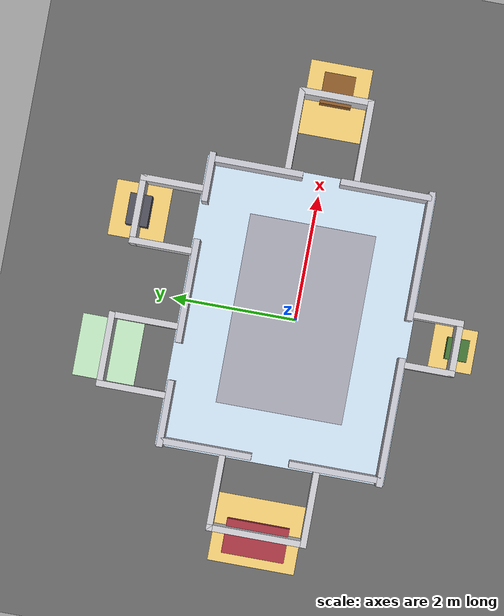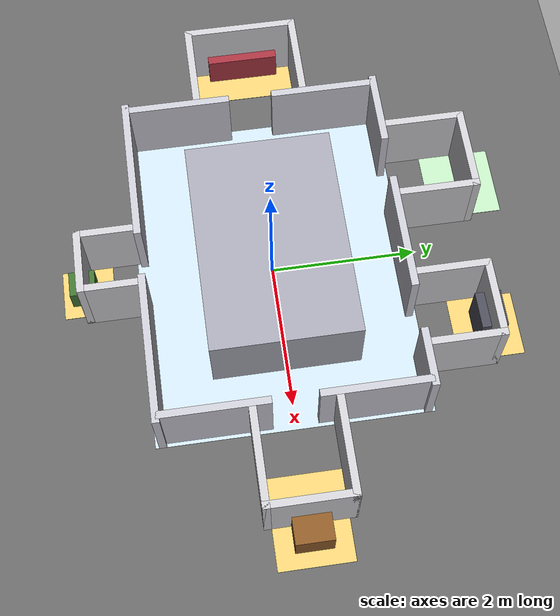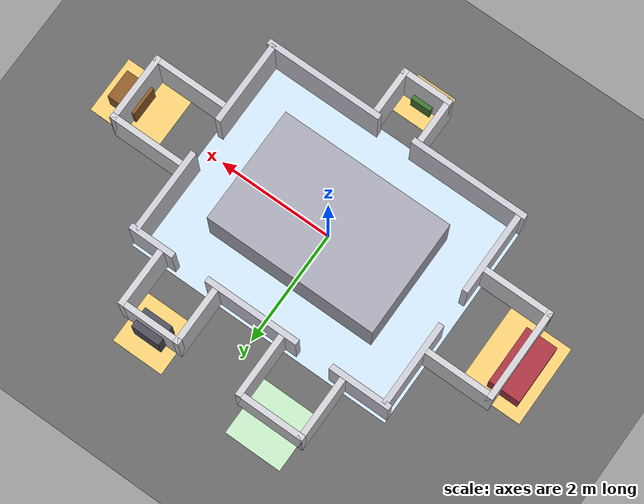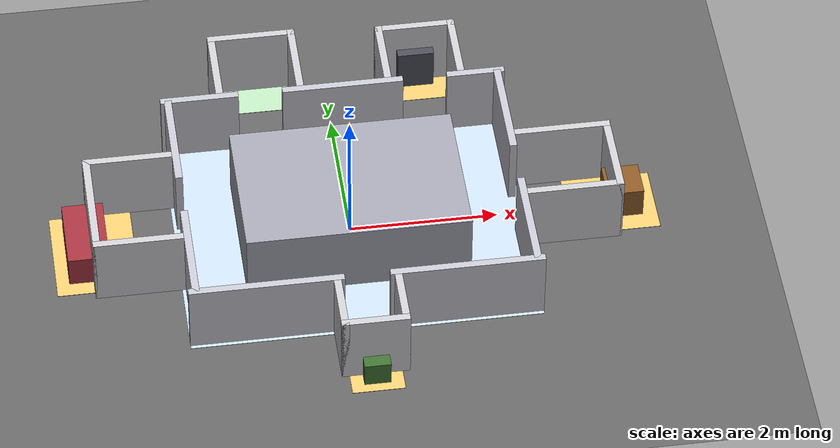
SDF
<?xml version="1.0" ?>
<sdf version="1.6">
  <world name="urbanlens_loop">
    <scene><ambient>0.55 0.55 0.55 1</ambient><background>0.75 0.82 0.9 1</background><shadows>true</shadows></scene>
    <light name="sun" type="directional">
      <cast_shadows>true</cast_shadows><pose>0 0 10 0 0 0</pose>
      <diffuse>0.85 0.85 0.85 1</diffuse><specular>0.2 0.2 0.2 1</specular>
      <attenuation><range>1000</range><constant>0.9</constant><linear>0.01</linear><quadratic>0.001</quadratic></attenuation>
      <direction>-0.4 0.2 -0.9</direction>
    </light>
    <model name="ground_plane">
      <static>true</static>
      <link name="link">
        <collision name="collision"><geometry><plane><normal>0 0 1</normal><size>60 60</size></plane></geometry>
          <surface><friction><ode><mu>100</mu><mu2>50</mu2></ode></friction></surface></collision>
        <visual name="visual"><cast_shadows>false</cast_shadows>
          <geometry><plane><normal>0 0 1</normal><size>60 60</size></plane></geometry>
          <material><ambient>0.4 0.4 0.4 1</ambient><diffuse>0.4 0.4 0.4 1</diffuse></material></visual>
      </link>
    </model>

    <model name="wall_top_0">
      <static>true</static>
      <pose>-1.8200 1.7500 0.5000 0 0 0.000000</pose>
      <link name="link">
      <collision name="collision"><geometry><box><size>1.0600000000000003 0.1 1.0</size></box></geometry></collision>
        <visual name="visual">
          <geometry><box><size>1.0600000000000003 0.1 1.0</size></box></geometry>
          <material><ambient>0.78 0.78 0.82 1</ambient><diffuse>0.78 0.78 0.82 1</diffuse></material>
        </visual>
      </link>
    </model>
    <model name="wall_top_1">
      <static>true</static>
      <pose>0.1350 1.7500 0.5000 0 0 0.000000</pose>
      <link name="link">
      <collision name="collision"><geometry><box><size>1.65 0.1 1.0</size></box></geometry></collision>
        <visual name="visual">
          <geometry><box><size>1.65 0.1 1.0</size></box></geometry>
          <material><ambient>0.78 0.78 0.82 1</ambient><diffuse>0.78 0.78 0.82 1</diffuse></material>
        </visual>
      </link>
    </model>
    <model name="wall_top_2">
      <static>true</static>
      <pose>1.9550 1.7500 0.5000 0 0 0.000000</pose>
      <link name="link">
      <collision name="collision"><geometry><box><size>0.7899999999999998 0.1 1.0</size></box></geometry></collision>
        <visual name="visual">
          <geometry><box><size>0.7899999999999998 0.1 1.0</size></box></geometry>
          <material><ambient>0.78 0.78 0.82 1</ambient><diffuse>0.78 0.78 0.82 1</diffuse></material>
        </visual>
      </link>
    </model>
    <model name="wall_bottom_0">
      <static>true</static>
      <pose>-1.3250 -1.7500 0.5000 0 0 0.000000</pose>
      <link name="link">
      <collision name="collision"><geometry><box><size>2.0500000000000003 0.1 1.0</size></box></geometry></collision>
        <visual name="visual">
          <geometry><box><size>2.0500000000000003 0.1 1.0</size></box></geometry>
          <material><ambient>0.78 0.78 0.82 1</ambient><diffuse>0.78 0.78 0.82 1</diffuse></material>
        </visual>
      </link>
    </model>
    <model name="wall_bottom_1">
      <static>true</static>
      <pose>1.3250 -1.7500 0.5000 0 0 0.000000</pose>
      <link name="link">
      <collision name="collision"><geometry><box><size>2.0500000000000003 0.1 1.0</size></box></geometry></collision>
        <visual name="visual">
          <geometry><box><size>2.0500000000000003 0.1 1.0</size></box></geometry>
          <material><ambient>0.78 0.78 0.82 1</ambient><diffuse>0.78 0.78 0.82 1</diffuse></material>
        </visual>
      </link>
    </model>
    <model name="wall_left_0">
      <static>true</static>
      <pose>-2.2500 -1.0250 0.5000 0 0 0.000000</pose>
      <link name="link">
      <collision name="collision"><geometry><box><size>0.1 1.45 1.0</size></box></geometry></collision>
        <visual name="visual">
          <geometry><box><size>0.1 1.45 1.0</size></box></geometry>
          <material><ambient>0.78 0.78 0.82 1</ambient><diffuse>0.78 0.78 0.82 1</diffuse></material>
        </visual>
      </link>
    </model>
    <model name="wall_left_1">
      <static>true</static>
      <pose>-2.2500 1.0250 0.5000 0 0 0.000000</pose>
      <link name="link">
      <collision name="collision"><geometry><box><size>0.1 1.45 1.0</size></box></geometry></collision>
        <visual name="visual">
          <geometry><box><size>0.1 1.45 1.0</size></box></geometry>
          <material><ambient>0.78 0.78 0.82 1</ambient><diffuse>0.78 0.78 0.82 1</diffuse></material>
        </visual>
      </link>
    </model>
    <model name="wall_right_0">
      <static>true</static>
      <pose>2.2500 -1.0250 0.5000 0 0 0.000000</pose>
      <link name="link">
      <collision name="collision"><geometry><box><size>0.1 1.45 1.0</size></box></geometry></collision>
        <visual name="visual">
          <geometry><box><size>0.1 1.45 1.0</size></box></geometry>
          <material><ambient>0.78 0.78 0.82 1</ambient><diffuse>0.78 0.78 0.82 1</diffuse></material>
        </visual>
      </link>
    </model>
    <model name="wall_right_1">
      <static>true</static>
      <pose>2.2500 1.0250 0.5000 0 0 0.000000</pose>
      <link name="link">
      <collision name="collision"><geometry><box><size>0.1 1.45 1.0</size></box></geometry></collision>
        <visual name="visual">
          <geometry><box><size>0.1 1.45 1.0</size></box></geometry>
          <material><ambient>0.78 0.78 0.82 1</ambient><diffuse>0.78 0.78 0.82 1</diffuse></material>
        </visual>
      </link>
    </model>
    <model name="island">
      <static>true</static>
      <pose>0.0000 0.0000 0.5000 0 0 0.000000</pose>
      <link name="link">
      <collision name="collision"><geometry><box><size>3.0 2.0 1.0</size></box></geometry></collision>
        <visual name="visual">
          <geometry><box><size>3.0 2.0 1.0</size></box></geometry>
          <material><ambient>0.65 0.65 0.7 1</ambient><diffuse>0.65 0.65 0.7 1</diffuse></material>
        </visual>
      </link>
    </model>
    <model name="lane_floor">
      <static>true</static>
      <pose>0.0000 0.0000 0.0010 0 0 0.000000</pose>
      <link name="link">
        <visual name="visual">
          <geometry><box><size>4.7 3.7 0.002</size></box></geometry>
          <material><ambient>0.8 0.88 0.95 1</ambient><diffuse>0.8 0.88 0.95 1</diffuse></material>
        </visual>
      </link>
    </model>
    <model name="S1_back">
      <static>true</static>
      <pose>-0.9900 2.8500 0.5000 0 0 0.000000</pose>
      <link name="link">
      <collision name="collision"><geometry><box><size>1.2 0.1 1.0</size></box></geometry></collision>
        <visual name="visual">
          <geometry><box><size>1.2 0.1 1.0</size></box></geometry>
          <material><ambient>0.8 0.8 0.82 1</ambient><diffuse>0.8 0.8 0.82 1</diffuse></material>
        </visual>
      </link>
    </model>
    <model name="S1_side-1">
      <static>true</static>
      <pose>-1.5400 2.3500 0.5000 0 0 0.000000</pose>
      <link name="link">
      <collision name="collision"><geometry><box><size>0.1 1.1 1.0</size></box></geometry></collision>
        <visual name="visual">
          <geometry><box><size>0.1 1.1 1.0</size></box></geometry>
          <material><ambient>0.8 0.8 0.82 1</ambient><diffuse>0.8 0.8 0.82 1</diffuse></material>
        </visual>
      </link>
    </model>
    <model name="S1_side1">
      <static>true</static>
      <pose>-0.4400 2.3500 0.5000 0 0 0.000000</pose>
      <link name="link">
      <collision name="collision"><geometry><box><size>0.1 1.1 1.0</size></box></geometry></collision>
        <visual name="visual">
          <geometry><box><size>0.1 1.1 1.0</size></box></geometry>
          <material><ambient>0.8 0.8 0.82 1</ambient><diffuse>0.8 0.8 0.82 1</diffuse></material>
        </visual>
      </link>
    </model>
    <model name="S1_floor">
      <static>true</static>
      <pose>-0.9900 2.8500 0.0020 0 0 0.000000</pose>
      <link name="link">
        <visual name="visual">
          <geometry><box><size>1.0 1.0 0.004</size></box></geometry>
          <material><ambient>0.75 0.9 0.75 1</ambient><diffuse>0.75 0.9 0.75 1</diffuse></material>
        </visual>
      </link>
    </model>
    <model name="S2_back">
      <static>true</static>
      <pose>3.5500 0.0000 0.5000 0 0 -1.570796</pose>
      <link name="link">
      <collision name="collision"><geometry><box><size>1.2 0.1 1.0</size></box></geometry></collision>
        <visual name="visual">
          <geometry><box><size>1.2 0.1 1.0</size></box></geometry>
          <material><ambient>0.8 0.8 0.82 1</ambient><diffuse>0.8 0.8 0.82 1</diffuse></material>
        </visual>
      </link>
    </model>
    <model name="S2_side-1">
      <static>true</static>
      <pose>2.9500 0.5500 0.5000 0 0 -1.570796</pose>
      <link name="link">
      <collision name="collision"><geometry><box><size>0.1 1.3 1.0</size></box></geometry></collision>
        <visual name="visual">
          <geometry><box><size>0.1 1.3 1.0</size></box></geometry>
          <material><ambient>0.8 0.8 0.82 1</ambient><diffuse>0.8 0.8 0.82 1</diffuse></material>
        </visual>
      </link>
    </model>
    <model name="S2_side1">
      <static>true</static>
      <pose>2.9500 -0.5500 0.5000 0 0 -1.570796</pose>
      <link name="link">
      <collision name="collision"><geometry><box><size>0.1 1.3 1.0</size></box></geometry></collision>
        <visual name="visual">
          <geometry><box><size>0.1 1.3 1.0</size></box></geometry>
          <material><ambient>0.8 0.8 0.82 1</ambient><diffuse>0.8 0.8 0.82 1</diffuse></material>
        </visual>
      </link>
    </model>
    <model name="S2_floor">
      <static>true</static>
      <pose>3.5500 0.0000 0.0020 0 0 -1.570796</pose>
      <link name="link">
        <visual name="visual">
          <geometry><box><size>1.0 1.2 0.004</size></box></geometry>
          <material><ambient>0.95 0.8 0.45 1</ambient><diffuse>0.95 0.8 0.45 1</diffuse></material>
        </visual>
      </link>
    </model>
    <model name="S2_object_table_chair">
      <static>true</static>
      <pose>3.7000 0.0000 0.2250 0 0 -1.570796</pose>
      <link name="link">
      <collision name="collision"><geometry><box><size>0.5 0.5 0.45</size></box></geometry></collision>
        <visual name="visual">
          <geometry><box><size>0.5 0.5 0.45</size></box></geometry>
          <material><ambient>0.55 0.35 0.15 1</ambient><diffuse>0.55 0.35 0.15 1</diffuse></material>
        </visual>
      </link>
    </model>
    <model name="S3_back">
      <static>true</static>
      <pose>0.0000 -2.5500 0.5000 0 0 -3.141593</pose>
      <link name="link">
      <collision name="collision"><geometry><box><size>0.8999999999999999 0.1 1.0</size></box></geometry></collision>
        <visual name="visual">
          <geometry><box><size>0.8999999999999999 0.1 1.0</size></box></geometry>
          <material><ambient>0.8 0.8 0.82 1</ambient><diffuse>0.8 0.8 0.82 1</diffuse></material>
        </visual>
      </link>
    </model>
    <model name="S3_side-1">
      <static>true</static>
      <pose>0.4000 -2.2000 0.5000 0 0 -3.141593</pose>
      <link name="link">
      <collision name="collision"><geometry><box><size>0.1 0.7999999999999999 1.0</size></box></geometry></collision>
        <visual name="visual">
          <geometry><box><size>0.1 0.7999999999999999 1.0</size></box></geometry>
          <material><ambient>0.8 0.8 0.82 1</ambient><diffuse>0.8 0.8 0.82 1</diffuse></material>
        </visual>
      </link>
    </model>
    <model name="S3_side1">
      <static>true</static>
      <pose>-0.4000 -2.2000 0.5000 0 0 -3.141593</pose>
      <link name="link">
      <collision name="collision"><geometry><box><size>0.1 0.7999999999999999 1.0</size></box></geometry></collision>
        <visual name="visual">
          <geometry><box><size>0.1 0.7999999999999999 1.0</size></box></geometry>
          <material><ambient>0.8 0.8 0.82 1</ambient><diffuse>0.8 0.8 0.82 1</diffuse></material>
        </visual>
      </link>
    </model>
    <model name="S3_floor">
      <static>true</static>
      <pose>0.0000 -2.5500 0.0020 0 0 -3.141593</pose>
      <link name="link">
        <visual name="visual">
          <geometry><box><size>0.7 0.7 0.004</size></box></geometry>
          <material><ambient>0.95 0.8 0.45 1</ambient><diffuse>0.95 0.8 0.45 1</diffuse></material>
        </visual>
      </link>
    </model>
    <model name="S3_object_trash_bag">
      <static>true</static>
      <pose>0.0000 -2.6000 0.1750 0 0 -3.141593</pose>
      <link name="link">
      <collision name="collision"><geometry><box><size>0.35 0.35 0.35</size></box></geometry></collision>
        <visual name="visual">
          <geometry><box><size>0.35 0.35 0.35</size></box></geometry>
          <material><ambient>0.25 0.45 0.2 1</ambient><diffuse>0.25 0.45 0.2 1</diffuse></material>
        </visual>
      </link>
    </model>
    <model name="S4_back">
      <static>true</static>
      <pose>-3.4500 0.0000 0.5000 0 0 1.570796</pose>
      <link name="link">
      <collision name="collision"><geometry><box><size>1.5999999999999999 0.1 1.0</size></box></geometry></collision>
        <visual name="visual">
          <geometry><box><size>1.5999999999999999 0.1 1.0</size></box></geometry>
          <material><ambient>0.8 0.8 0.82 1</ambient><diffuse>0.8 0.8 0.82 1</diffuse></material>
        </visual>
      </link>
    </model>
    <model name="S4_side-1">
      <static>true</static>
      <pose>-2.9000 -0.7500 0.5000 0 0 1.570796</pose>
      <link name="link">
      <collision name="collision"><geometry><box><size>0.1 1.2000000000000002 1.0</size></box></geometry></collision>
        <visual name="visual">
          <geometry><box><size>0.1 1.2000000000000002 1.0</size></box></geometry>
          <material><ambient>0.8 0.8 0.82 1</ambient><diffuse>0.8 0.8 0.82 1</diffuse></material>
        </visual>
      </link>
    </model>
    <model name="S4_side1">
      <static>true</static>
      <pose>-2.9000 0.7500 0.5000 0 0 1.570796</pose>
      <link name="link">
      <collision name="collision"><geometry><box><size>0.1 1.2000000000000002 1.0</size></box></geometry></collision>
        <visual name="visual">
          <geometry><box><size>0.1 1.2000000000000002 1.0</size></box></geometry>
          <material><ambient>0.8 0.8 0.82 1</ambient><diffuse>0.8 0.8 0.82 1</diffuse></material>
        </visual>
      </link>
    </model>
    <model name="S4_floor">
      <static>true</static>
      <pose>-3.4500 0.0000 0.0020 0 0 1.570796</pose>
      <link name="link">
        <visual name="visual">
          <geometry><box><size>1.4 1.1 0.004</size></box></geometry>
          <material><ambient>0.95 0.8 0.45 1</ambient><diffuse>0.95 0.8 0.45 1</diffuse></material>
        </visual>
      </link>
    </model>
    <model name="S4_object_bed">
      <static>true</static>
      <pose>-3.5500 0.0000 0.2250 0 0 1.570796</pose>
      <link name="link">
      <collision name="collision"><geometry><box><size>1.0 0.55 0.45</size></box></geometry></collision>
        <visual name="visual">
          <geometry><box><size>1.0 0.55 0.45</size></box></geometry>
          <material><ambient>0.65 0.2 0.25 1</ambient><diffuse>0.65 0.2 0.25 1</diffuse></material>
        </visual>
      </link>
    </model>
    <model name="S5_back">
      <static>true</static>
      <pose>1.2600 2.7500 0.5000 0 0 0.000000</pose>
      <link name="link">
      <collision name="collision"><geometry><box><size>1.1 0.1 1.0</size></box></geometry></collision>
        <visual name="visual">
          <geometry><box><size>1.1 0.1 1.0</size></box></geometry>
          <material><ambient>0.8 0.8 0.82 1</ambient><diffuse>0.8 0.8 0.82 1</diffuse></material>
        </visual>
      </link>
    </model>
    <model name="S5_side-1">
      <static>true</static>
      <pose>0.7600 2.3000 0.5000 0 0 0.000000</pose>
      <link name="link">
      <collision name="collision"><geometry><box><size>0.1 1.0 1.0</size></box></geometry></collision>
        <visual name="visual">
          <geometry><box><size>0.1 1.0 1.0</size></box></geometry>
          <material><ambient>0.8 0.8 0.82 1</ambient><diffuse>0.8 0.8 0.82 1</diffuse></material>
        </visual>
      </link>
    </model>
    <model name="S5_side1">
      <static>true</static>
      <pose>1.7600 2.3000 0.5000 0 0 0.000000</pose>
      <link name="link">
      <collision name="collision"><geometry><box><size>0.1 1.0 1.0</size></box></geometry></collision>
        <visual name="visual">
          <geometry><box><size>0.1 1.0 1.0</size></box></geometry>
          <material><ambient>0.8 0.8 0.82 1</ambient><diffuse>0.8 0.8 0.82 1</diffuse></material>
        </visual>
      </link>
    </model>
    <model name="S5_floor">
      <static>true</static>
      <pose>1.2600 2.7500 0.0020 0 0 0.000000</pose>
      <link name="link">
        <visual name="visual">
          <geometry><box><size>0.9 0.9 0.004</size></box></geometry>
          <material><ambient>0.95 0.8 0.45 1</ambient><diffuse>0.95 0.8 0.45 1</diffuse></material>
        </visual>
      </link>
    </model>
    <model name="S5_object_trolley">
      <static>true</static>
      <pose>1.2600 2.7500 0.3000 0 0 0.000000</pose>
      <link name="link">
      <collision name="collision"><geometry><box><size>0.5 0.35 0.6</size></box></geometry></collision>
        <visual name="visual">
          <geometry><box><size>0.5 0.35 0.6</size></box></geometry>
          <material><ambient>0.3 0.3 0.35 1</ambient><diffuse>0.3 0.3 0.35 1</diffuse></material>
        </visual>
      </link>
    </model>
  </world>
</sdf>
